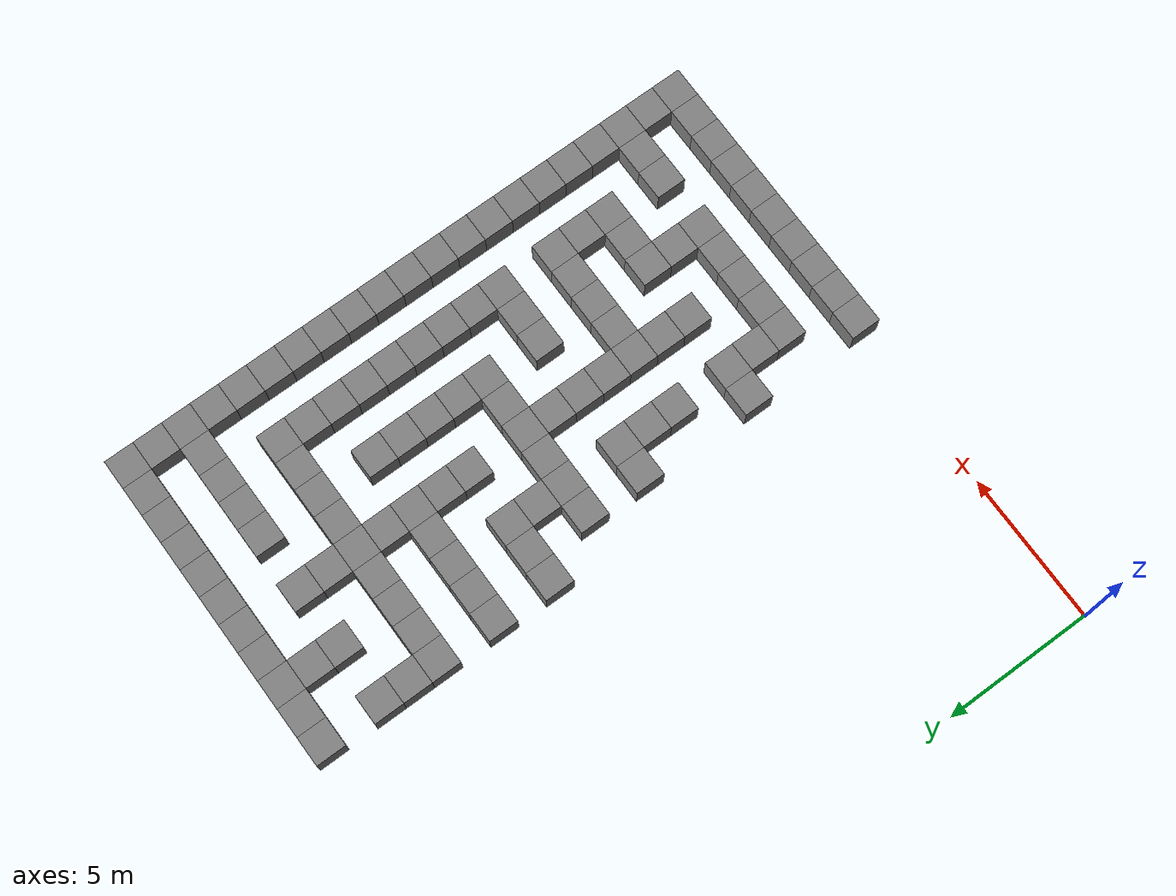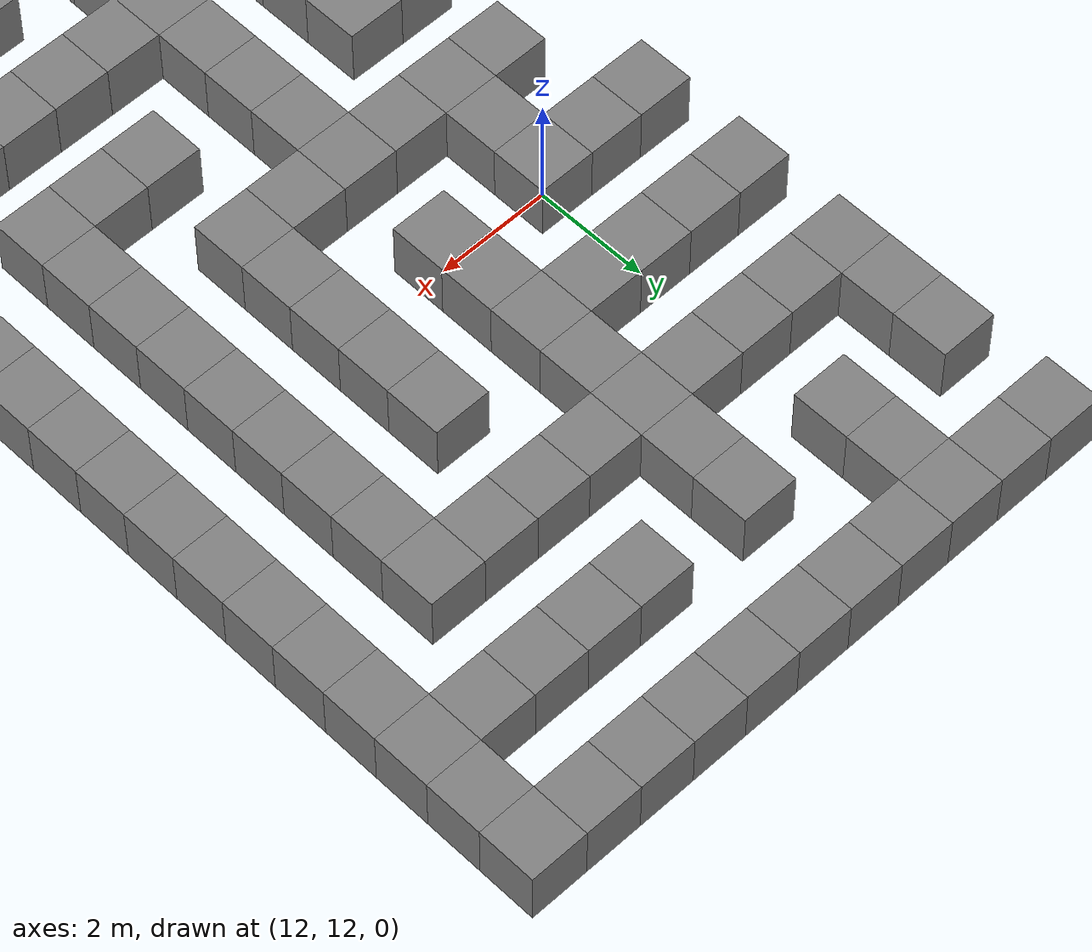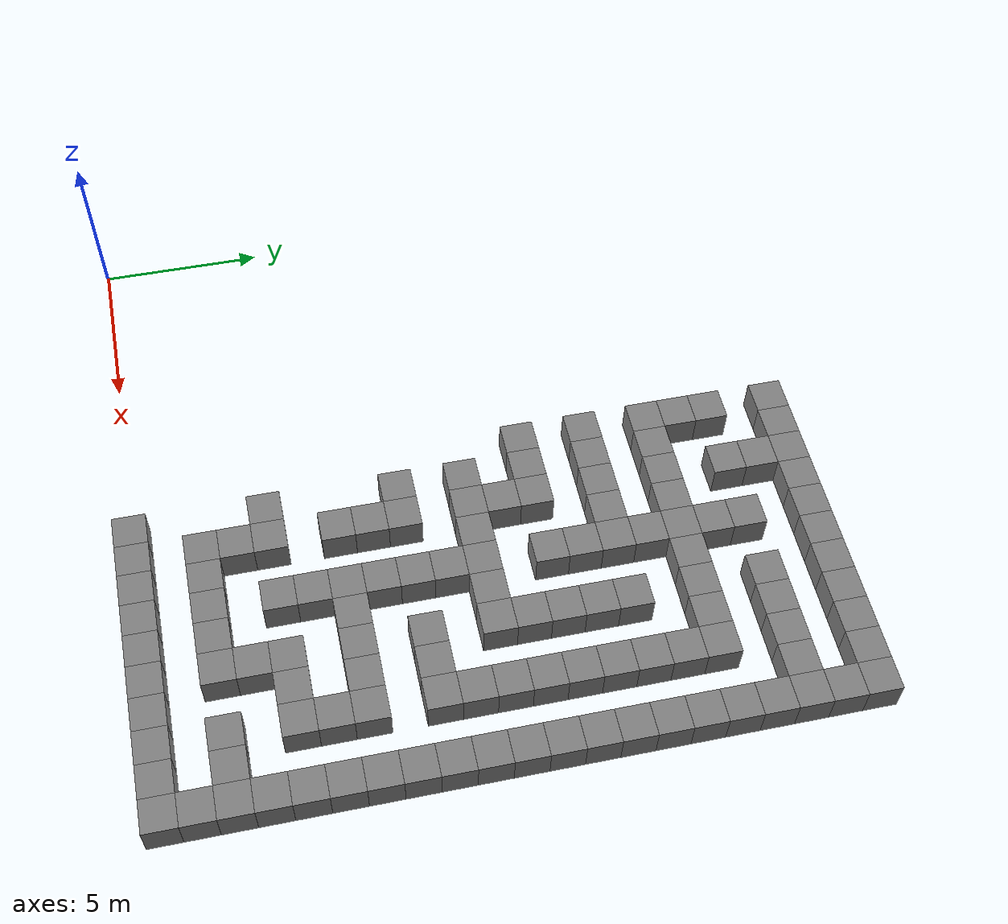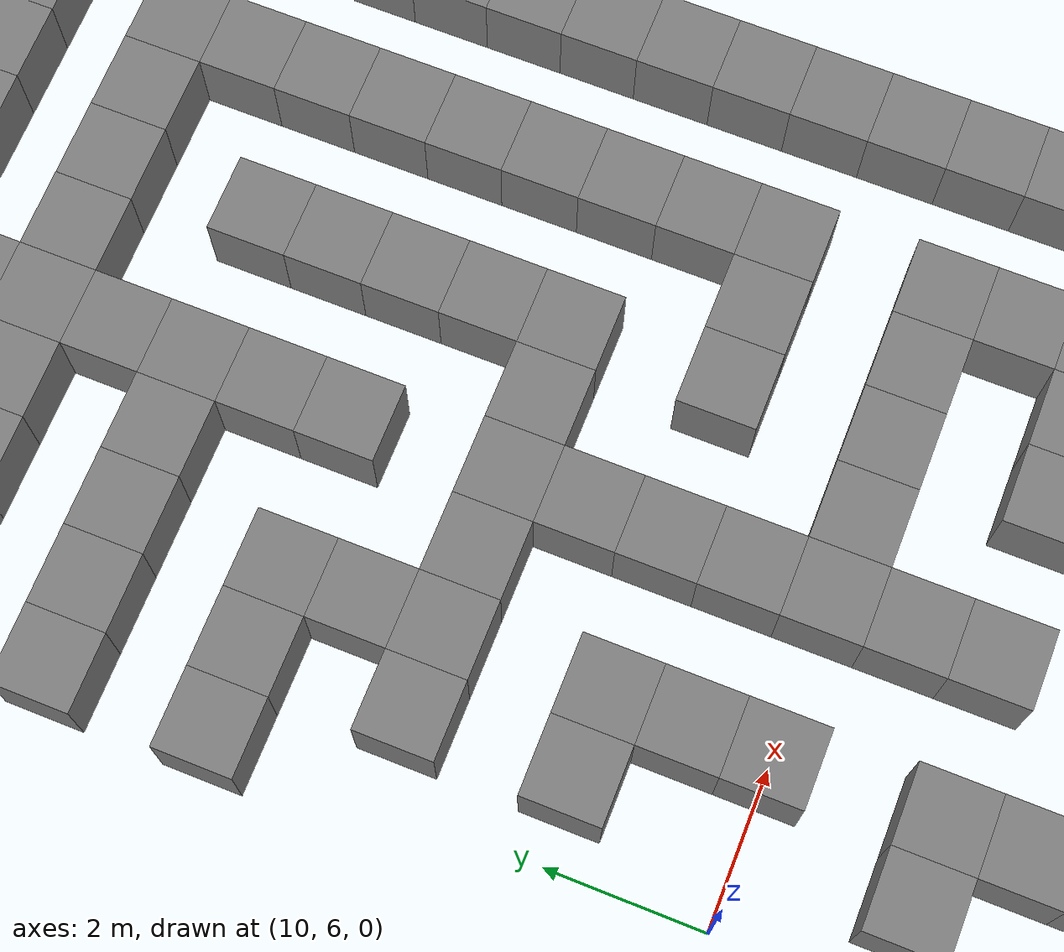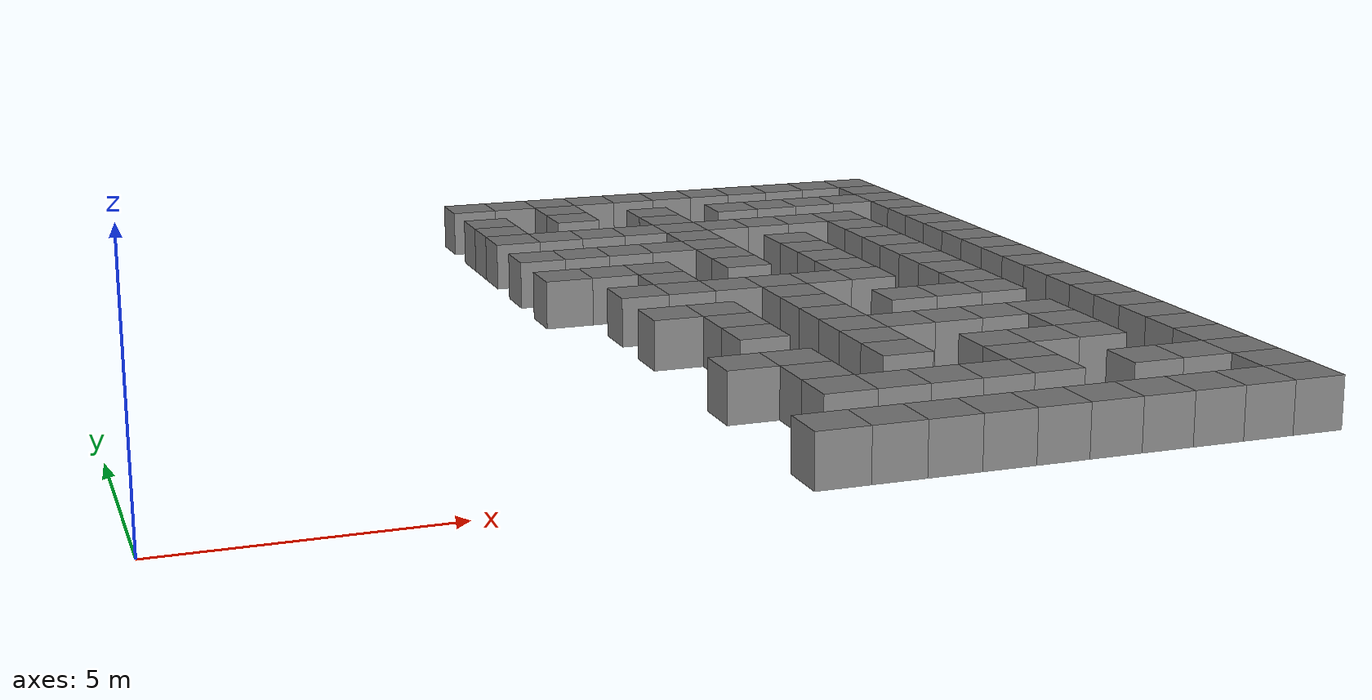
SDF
<sdf version="1.7">
 <model name="maze">
  <static>true</static>
  <link name="wall_10_12">
   <pose>10.0 12.0 0.5 0 0 0</pose>
   <collision name="collision"><geometry><box><size>1.0 1.0 1.0</size></box></geometry></collision>
   <visual name="visual">
    <geometry><box><size>1.0 1.0 1.0</size></box></geometry>
    <material><ambient>0.5 0.5 0.5 1</ambient></material>
   </visual>
  </link>
  <link name="wall_10_14">
   <pose>10.0 14.0 0.5 0 0 0</pose>
   <collision name="collision"><geometry><box><size>1.0 1.0 1.0</size></box></geometry></collision>
   <visual name="visual">
    <geometry><box><size>1.0 1.0 1.0</size></box></geometry>
    <material><ambient>0.5 0.5 0.5 1</ambient></material>
   </visual>
  </link>
  <link name="wall_10_16">
   <pose>10.0 16.0 0.5 0 0 0</pose>
   <collision name="collision"><geometry><box><size>1.0 1.0 1.0</size></box></geometry></collision>
   <visual name="visual">
    <geometry><box><size>1.0 1.0 1.0</size></box></geometry>
    <material><ambient>0.5 0.5 0.5 1</ambient></material>
   </visual>
  </link>
  <link name="wall_10_17">
   <pose>10.0 17.0 0.5 0 0 0</pose>
   <collision name="collision"><geometry><box><size>1.0 1.0 1.0</size></box></geometry></collision>
   <visual name="visual">
    <geometry><box><size>1.0 1.0 1.0</size></box></geometry>
    <material><ambient>0.5 0.5 0.5 1</ambient></material>
   </visual>
  </link>
  <link name="wall_10_18">
   <pose>10.0 18.0 0.5 0 0 0</pose>
   <collision name="collision"><geometry><box><size>1.0 1.0 1.0</size></box></geometry></collision>
   <visual name="visual">
    <geometry><box><size>1.0 1.0 1.0</size></box></geometry>
    <material><ambient>0.5 0.5 0.5 1</ambient></material>
   </visual>
  </link>
  <link name="wall_10_20">
   <pose>10.0 20.0 0.5 0 0 0</pose>
   <collision name="collision"><geometry><box><size>1.0 1.0 1.0</size></box></geometry></collision>
   <visual name="visual">
    <geometry><box><size>1.0 1.0 1.0</size></box></geometry>
    <material><ambient>0.5 0.5 0.5 1</ambient></material>
   </visual>
  </link>
  <link name="wall_11_0">
   <pose>11.0 0.0 0.5 0 0 0</pose>
   <collision name="collision"><geometry><box><size>1.0 1.0 1.0</size></box></geometry></collision>
   <visual name="visual">
    <geometry><box><size>1.0 1.0 1.0</size></box></geometry>
    <material><ambient>0.5 0.5 0.5 1</ambient></material>
   </visual>
  </link>
  <link name="wall_11_4">
   <pose>11.0 4.0 0.5 0 0 0</pose>
   <collision name="collision"><geometry><box><size>1.0 1.0 1.0</size></box></geometry></collision>
   <visual name="visual">
    <geometry><box><size>1.0 1.0 1.0</size></box></geometry>
    <material><ambient>0.5 0.5 0.5 1</ambient></material>
   </visual>
  </link>
  <link name="wall_11_8">
   <pose>11.0 8.0 0.5 0 0 0</pose>
   <collision name="collision"><geometry><box><size>1.0 1.0 1.0</size></box></geometry></collision>
   <visual name="visual">
    <geometry><box><size>1.0 1.0 1.0</size></box></geometry>
    <material><ambient>0.5 0.5 0.5 1</ambient></material>
   </visual>
  </link>
  <link name="wall_11_10">
   <pose>11.0 10.0 0.5 0 0 0</pose>
   <collision name="collision"><geometry><box><size>1.0 1.0 1.0</size></box></geometry></collision>
   <visual name="visual">
    <geometry><box><size>1.0 1.0 1.0</size></box></geometry>
    <material><ambient>0.5 0.5 0.5 1</ambient></material>
   </visual>
  </link>
  <link name="wall_11_12">
   <pose>11.0 12.0 0.5 0 0 0</pose>
   <collision name="collision"><geometry><box><size>1.0 1.0 1.0</size></box></geometry></collision>
   <visual name="visual">
    <geometry><box><size>1.0 1.0 1.0</size></box></geometry>
    <material><ambient>0.5 0.5 0.5 1</ambient></material>
   </visual>
  </link>
  <link name="wall_11_14">
   <pose>11.0 14.0 0.5 0 0 0</pose>
   <collision name="collision"><geometry><box><size>1.0 1.0 1.0</size></box></geometry></collision>
   <visual name="visual">
    <geometry><box><size>1.0 1.0 1.0</size></box></geometry>
    <material><ambient>0.5 0.5 0.5 1</ambient></material>
   </visual>
  </link>
  <link name="wall_11_16">
   <pose>11.0 16.0 0.5 0 0 0</pose>
   <collision name="collision"><geometry><box><size>1.0 1.0 1.0</size></box></geometry></collision>
   <visual name="visual">
    <geometry><box><size>1.0 1.0 1.0</size></box></geometry>
    <material><ambient>0.5 0.5 0.5 1</ambient></material>
   </visual>
  </link>
  <link name="wall_11_20">
   <pose>11.0 20.0 0.5 0 0 0</pose>
   <collision name="collision"><geometry><box><size>1.0 1.0 1.0</size></box></geometry></collision>
   <visual name="visual">
    <geometry><box><size>1.0 1.0 1.0</size></box></geometry>
    <material><ambient>0.5 0.5 0.5 1</ambient></material>
   </visual>
  </link>
  <link name="wall_12_0">
   <pose>12.0 0.0 0.5 0 0 0</pose>
   <collision name="collision"><geometry><box><size>1.0 1.0 1.0</size></box></geometry></collision>
   <visual name="visual">
    <geometry><box><size>1.0 1.0 1.0</size></box></geometry>
    <material><ambient>0.5 0.5 0.5 1</ambient></material>
   </visual>
  </link>
  <link name="wall_12_2">
   <pose>12.0 2.0 0.5 0 0 0</pose>
   <collision name="collision"><geometry><box><size>1.0 1.0 1.0</size></box></geometry></collision>
   <visual name="visual">
    <geometry><box><size>1.0 1.0 1.0</size></box></geometry>
    <material><ambient>0.5 0.5 0.5 1</ambient></material>
   </visual>
  </link>
  <link name="wall_12_3">
   <pose>12.0 3.0 0.5 0 0 0</pose>
   <collision name="collision"><geometry><box><size>1.0 1.0 1.0</size></box></geometry></collision>
   <visual name="visual">
    <geometry><box><size>1.0 1.0 1.0</size></box></geometry>
    <material><ambient>0.5 0.5 0.5 1</ambient></material>
   </visual>
  </link>
  <link name="wall_12_4">
   <pose>12.0 4.0 0.5 0 0 0</pose>
   <collision name="collision"><geometry><box><size>1.0 1.0 1.0</size></box></geometry></collision>
   <visual name="visual">
    <geometry><box><size>1.0 1.0 1.0</size></box></geometry>
    <material><ambient>0.5 0.5 0.5 1</ambient></material>
   </visual>
  </link>
  <link name="wall_12_6">
   <pose>12.0 6.0 0.5 0 0 0</pose>
   <collision name="collision"><geometry><box><size>1.0 1.0 1.0</size></box></geometry></collision>
   <visual name="visual">
    <geometry><box><size>1.0 1.0 1.0</size></box></geometry>
    <material><ambient>0.5 0.5 0.5 1</ambient></material>
   </visual>
  </link>
  <link name="wall_12_7">
   <pose>12.0 7.0 0.5 0 0 0</pose>
   <collision name="collision"><geometry><box><size>1.0 1.0 1.0</size></box></geometry></collision>
   <visual name="visual">
    <geometry><box><size>1.0 1.0 1.0</size></box></geometry>
    <material><ambient>0.5 0.5 0.5 1</ambient></material>
   </visual>
  </link>
  <link name="wall_12_8">
   <pose>12.0 8.0 0.5 0 0 0</pose>
   <collision name="collision"><geometry><box><size>1.0 1.0 1.0</size></box></geometry></collision>
   <visual name="visual">
    <geometry><box><size>1.0 1.0 1.0</size></box></geometry>
    <material><ambient>0.5 0.5 0.5 1</ambient></material>
   </visual>
  </link>
  <link name="wall_12_10">
   <pose>12.0 10.0 0.5 0 0 0</pose>
   <collision name="collision"><geometry><box><size>1.0 1.0 1.0</size></box></geometry></collision>
   <visual name="visual">
    <geometry><box><size>1.0 1.0 1.0</size></box></geometry>
    <material><ambient>0.5 0.5 0.5 1</ambient></material>
   </visual>
  </link>
  <link name="wall_12_11">
   <pose>12.0 11.0 0.5 0 0 0</pose>
   <collision name="collision"><geometry><box><size>1.0 1.0 1.0</size></box></geometry></collision>
   <visual name="visual">
    <geometry><box><size>1.0 1.0 1.0</size></box></geometry>
    <material><ambient>0.5 0.5 0.5 1</ambient></material>
   </visual>
  </link>
  <link name="wall_12_12">
   <pose>12.0 12.0 0.5 0 0 0</pose>
   <collision name="collision"><geometry><box><size>1.0 1.0 1.0</size></box></geometry></collision>
   <visual name="visual">
    <geometry><box><size>1.0 1.0 1.0</size></box></geometry>
    <material><ambient>0.5 0.5 0.5 1</ambient></material>
   </visual>
  </link>
  <link name="wall_12_14">
   <pose>12.0 14.0 0.5 0 0 0</pose>
   <collision name="collision"><geometry><box><size>1.0 1.0 1.0</size></box></geometry></collision>
   <visual name="visual">
    <geometry><box><size>1.0 1.0 1.0</size></box></geometry>
    <material><ambient>0.5 0.5 0.5 1</ambient></material>
   </visual>
  </link>
  <link name="wall_12_16">
   <pose>12.0 16.0 0.5 0 0 0</pose>
   <collision name="collision"><geometry><box><size>1.0 1.0 1.0</size></box></geometry></collision>
   <visual name="visual">
    <geometry><box><size>1.0 1.0 1.0</size></box></geometry>
    <material><ambient>0.5 0.5 0.5 1</ambient></material>
   </visual>
  </link>
  <link name="wall_12_18">
   <pose>12.0 18.0 0.5 0 0 0</pose>
   <collision name="collision"><geometry><box><size>1.0 1.0 1.0</size></box></geometry></collision>
   <visual name="visual">
    <geometry><box><size>1.0 1.0 1.0</size></box></geometry>
    <material><ambient>0.5 0.5 0.5 1</ambient></material>
   </visual>
  </link>
  <link name="wall_12_19">
   <pose>12.0 19.0 0.5 0 0 0</pose>
   <collision name="collision"><geometry><box><size>1.0 1.0 1.0</size></box></geometry></collision>
   <visual name="visual">
    <geometry><box><size>1.0 1.0 1.0</size></box></geometry>
    <material><ambient>0.5 0.5 0.5 1</ambient></material>
   </visual>
  </link>
  <link name="wall_12_20">
   <pose>12.0 20.0 0.5 0 0 0</pose>
   <collision name="collision"><geometry><box><size>1.0 1.0 1.0</size></box></geometry></collision>
   <visual name="visual">
    <geometry><box><size>1.0 1.0 1.0</size></box></geometry>
    <material><ambient>0.5 0.5 0.5 1</ambient></material>
   </visual>
  </link>
  <link name="wall_13_0">
   <pose>13.0 0.0 0.5 0 0 0</pose>
   <collision name="collision"><geometry><box><size>1.0 1.0 1.0</size></box></geometry></collision>
   <visual name="visual">
    <geometry><box><size>1.0 1.0 1.0</size></box></geometry>
    <material><ambient>0.5 0.5 0.5 1</ambient></material>
   </visual>
  </link>
  <link name="wall_13_2">
   <pose>13.0 2.0 0.5 0 0 0</pose>
   <collision name="collision"><geometry><box><size>1.0 1.0 1.0</size></box></geometry></collision>
   <visual name="visual">
    <geometry><box><size>1.0 1.0 1.0</size></box></geometry>
    <material><ambient>0.5 0.5 0.5 1</ambient></material>
   </visual>
  </link>
  <link name="wall_13_10">
   <pose>13.0 10.0 0.5 0 0 0</pose>
   <collision name="collision"><geometry><box><size>1.0 1.0 1.0</size></box></geometry></collision>
   <visual name="visual">
    <geometry><box><size>1.0 1.0 1.0</size></box></geometry>
    <material><ambient>0.5 0.5 0.5 1</ambient></material>
   </visual>
  </link>
  <link name="wall_13_14">
   <pose>13.0 14.0 0.5 0 0 0</pose>
   <collision name="collision"><geometry><box><size>1.0 1.0 1.0</size></box></geometry></collision>
   <visual name="visual">
    <geometry><box><size>1.0 1.0 1.0</size></box></geometry>
    <material><ambient>0.5 0.5 0.5 1</ambient></material>
   </visual>
  </link>
  <link name="wall_13_16">
   <pose>13.0 16.0 0.5 0 0 0</pose>
   <collision name="collision"><geometry><box><size>1.0 1.0 1.0</size></box></geometry></collision>
   <visual name="visual">
    <geometry><box><size>1.0 1.0 1.0</size></box></geometry>
    <material><ambient>0.5 0.5 0.5 1</ambient></material>
   </visual>
  </link>
  <link name="wall_13_20">
   <pose>13.0 20.0 0.5 0 0 0</pose>
   <collision name="collision"><geometry><box><size>1.0 1.0 1.0</size></box></geometry></collision>
   <visual name="visual">
    <geometry><box><size>1.0 1.0 1.0</size></box></geometry>
    <material><ambient>0.5 0.5 0.5 1</ambient></material>
   </visual>
  </link>
  <link name="wall_14_0">
   <pose>14.0 0.0 0.5 0 0 0</pose>
   <collision name="collision"><geometry><box><size>1.0 1.0 1.0</size></box></geometry></collision>
   <visual name="visual">
    <geometry><box><size>1.0 1.0 1.0</size></box></geometry>
    <material><ambient>0.5 0.5 0.5 1</ambient></material>
   </visual>
  </link>
  <link name="wall_14_2">
   <pose>14.0 2.0 0.5 0 0 0</pose>
   <collision name="collision"><geometry><box><size>1.0 1.0 1.0</size></box></geometry></collision>
   <visual name="visual">
    <geometry><box><size>1.0 1.0 1.0</size></box></geometry>
    <material><ambient>0.5 0.5 0.5 1</ambient></material>
   </visual>
  </link>
  <link name="wall_14_4">
   <pose>14.0 4.0 0.5 0 0 0</pose>
   <collision name="collision"><geometry><box><size>1.0 1.0 1.0</size></box></geometry></collision>
   <visual name="visual">
    <geometry><box><size>1.0 1.0 1.0</size></box></geometry>
    <material><ambient>0.5 0.5 0.5 1</ambient></material>
   </visual>
  </link>
  <link name="wall_14_5">
   <pose>14.0 5.0 0.5 0 0 0</pose>
   <collision name="collision"><geometry><box><size>1.0 1.0 1.0</size></box></geometry></collision>
   <visual name="visual">
    <geometry><box><size>1.0 1.0 1.0</size></box></geometry>
    <material><ambient>0.5 0.5 0.5 1</ambient></material>
   </visual>
  </link>
  <link name="wall_14_6">
   <pose>14.0 6.0 0.5 0 0 0</pose>
   <collision name="collision"><geometry><box><size>1.0 1.0 1.0</size></box></geometry></collision>
   <visual name="visual">
    <geometry><box><size>1.0 1.0 1.0</size></box></geometry>
    <material><ambient>0.5 0.5 0.5 1</ambient></material>
   </visual>
  </link>
  <link name="wall_14_7">
   <pose>14.0 7.0 0.5 0 0 0</pose>
   <collision name="collision"><geometry><box><size>1.0 1.0 1.0</size></box></geometry></collision>
   <visual name="visual">
    <geometry><box><size>1.0 1.0 1.0</size></box></geometry>
    <material><ambient>0.5 0.5 0.5 1</ambient></material>
   </visual>
  </link>
  <link name="wall_14_8">
   <pose>14.0 8.0 0.5 0 0 0</pose>
   <collision name="collision"><geometry><box><size>1.0 1.0 1.0</size></box></geometry></collision>
   <visual name="visual">
    <geometry><box><size>1.0 1.0 1.0</size></box></geometry>
    <material><ambient>0.5 0.5 0.5 1</ambient></material>
   </visual>
  </link>
  <link name="wall_14_9">
   <pose>14.0 9.0 0.5 0 0 0</pose>
   <collision name="collision"><geometry><box><size>1.0 1.0 1.0</size></box></geometry></collision>
   <visual name="visual">
    <geometry><box><size>1.0 1.0 1.0</size></box></geometry>
    <material><ambient>0.5 0.5 0.5 1</ambient></material>
   </visual>
  </link>
  <link name="wall_14_10">
   <pose>14.0 10.0 0.5 0 0 0</pose>
   <collision name="collision"><geometry><box><size>1.0 1.0 1.0</size></box></geometry></collision>
   <visual name="visual">
    <geometry><box><size>1.0 1.0 1.0</size></box></geometry>
    <material><ambient>0.5 0.5 0.5 1</ambient></material>
   </visual>
  </link>
  <link name="wall_14_12">
   <pose>14.0 12.0 0.5 0 0 0</pose>
   <collision name="collision"><geometry><box><size>1.0 1.0 1.0</size></box></geometry></collision>
   <visual name="visual">
    <geometry><box><size>1.0 1.0 1.0</size></box></geometry>
    <material><ambient>0.5 0.5 0.5 1</ambient></material>
   </visual>
  </link>
  <link name="wall_14_13">
   <pose>14.0 13.0 0.5 0 0 0</pose>
   <collision name="collision"><geometry><box><size>1.0 1.0 1.0</size></box></geometry></collision>
   <visual name="visual">
    <geometry><box><size>1.0 1.0 1.0</size></box></geometry>
    <material><ambient>0.5 0.5 0.5 1</ambient></material>
   </visual>
  </link>
  <link name="wall_14_14">
   <pose>14.0 14.0 0.5 0 0 0</pose>
   <collision name="collision"><geometry><box><size>1.0 1.0 1.0</size></box></geometry></collision>
   <visual name="visual">
    <geometry><box><size>1.0 1.0 1.0</size></box></geometry>
    <material><ambient>0.5 0.5 0.5 1</ambient></material>
   </visual>
  </link>
  <link name="wall_14_15">
   <pose>14.0 15.0 0.5 0 0 0</pose>
   <collision name="collision"><geometry><box><size>1.0 1.0 1.0</size></box></geometry></collision>
   <visual name="visual">
    <geometry><box><size>1.0 1.0 1.0</size></box></geometry>
    <material><ambient>0.5 0.5 0.5 1</ambient></material>
   </visual>
  </link>
  <link name="wall_14_16">
   <pose>14.0 16.0 0.5 0 0 0</pose>
   <collision name="collision"><geometry><box><size>1.0 1.0 1.0</size></box></geometry></collision>
   <visual name="visual">
    <geometry><box><size>1.0 1.0 1.0</size></box></geometry>
    <material><ambient>0.5 0.5 0.5 1</ambient></material>
   </visual>
  </link>
  <link name="wall_14_17">
   <pose>14.0 17.0 0.5 0 0 0</pose>
   <collision name="collision"><geometry><box><size>1.0 1.0 1.0</size></box></geometry></collision>
   <visual name="visual">
    <geometry><box><size>1.0 1.0 1.0</size></box></geometry>
    <material><ambient>0.5 0.5 0.5 1</ambient></material>
   </visual>
  </link>
  <link name="wall_14_18">
   <pose>14.0 18.0 0.5 0 0 0</pose>
   <collision name="collision"><geometry><box><size>1.0 1.0 1.0</size></box></geometry></collision>
   <visual name="visual">
    <geometry><box><size>1.0 1.0 1.0</size></box></geometry>
    <material><ambient>0.5 0.5 0.5 1</ambient></material>
   </visual>
  </link>
  <link name="wall_14_20">
   <pose>14.0 20.0 0.5 0 0 0</pose>
   <collision name="collision"><geometry><box><size>1.0 1.0 1.0</size></box></geometry></collision>
   <visual name="visual">
    <geometry><box><size>1.0 1.0 1.0</size></box></geometry>
    <material><ambient>0.5 0.5 0.5 1</ambient></material>
   </visual>
  </link>
  <link name="wall_15_0">
   <pose>15.0 0.0 0.5 0 0 0</pose>
   <collision name="collision"><geometry><box><size>1.0 1.0 1.0</size></box></geometry></collision>
   <visual name="visual">
    <geometry><box><size>1.0 1.0 1.0</size></box></geometry>
    <material><ambient>0.5 0.5 0.5 1</ambient></material>
   </visual>
  </link>
  <link name="wall_15_2">
   <pose>15.0 2.0 0.5 0 0 0</pose>
   <collision name="collision"><geometry><box><size>1.0 1.0 1.0</size></box></geometry></collision>
   <visual name="visual">
    <geometry><box><size>1.0 1.0 1.0</size></box></geometry>
    <material><ambient>0.5 0.5 0.5 1</ambient></material>
   </visual>
  </link>
  <link name="wall_15_6">
   <pose>15.0 6.0 0.5 0 0 0</pose>
   <collision name="collision"><geometry><box><size>1.0 1.0 1.0</size></box></geometry></collision>
   <visual name="visual">
    <geometry><box><size>1.0 1.0 1.0</size></box></geometry>
    <material><ambient>0.5 0.5 0.5 1</ambient></material>
   </visual>
  </link>
  <link name="wall_15_10">
   <pose>15.0 10.0 0.5 0 0 0</pose>
   <collision name="collision"><geometry><box><size>1.0 1.0 1.0</size></box></geometry></collision>
   <visual name="visual">
    <geometry><box><size>1.0 1.0 1.0</size></box></geometry>
    <material><ambient>0.5 0.5 0.5 1</ambient></material>
   </visual>
  </link>
  <link name="wall_15_16">
   <pose>15.0 16.0 0.5 0 0 0</pose>
   <collision name="collision"><geometry><box><size>1.0 1.0 1.0</size></box></geometry></collision>
   <visual name="visual">
    <geometry><box><size>1.0 1.0 1.0</size></box></geometry>
    <material><ambient>0.5 0.5 0.5 1</ambient></material>
   </visual>
  </link>
  <link name="wall_15_20">
   <pose>15.0 20.0 0.5 0 0 0</pose>
   <collision name="collision"><geometry><box><size>1.0 1.0 1.0</size></box></geometry></collision>
   <visual name="visual">
    <geometry><box><size>1.0 1.0 1.0</size></box></geometry>
    <material><ambient>0.5 0.5 0.5 1</ambient></material>
   </visual>
  </link>
  <link name="wall_16_0">
   <pose>16.0 0.0 0.5 0 0 0</pose>
   <collision name="collision"><geometry><box><size>1.0 1.0 1.0</size></box></geometry></collision>
   <visual name="visual">
    <geometry><box><size>1.0 1.0 1.0</size></box></geometry>
    <material><ambient>0.5 0.5 0.5 1</ambient></material>
   </visual>
  </link>
  <link name="wall_16_2">
   <pose>16.0 2.0 0.5 0 0 0</pose>
   <collision name="collision"><geometry><box><size>1.0 1.0 1.0</size></box></geometry></collision>
   <visual name="visual">
    <geometry><box><size>1.0 1.0 1.0</size></box></geometry>
    <material><ambient>0.5 0.5 0.5 1</ambient></material>
   </visual>
  </link>
  <link name="wall_16_3">
   <pose>16.0 3.0 0.5 0 0 0</pose>
   <collision name="collision"><geometry><box><size>1.0 1.0 1.0</size></box></geometry></collision>
   <visual name="visual">
    <geometry><box><size>1.0 1.0 1.0</size></box></geometry>
    <material><ambient>0.5 0.5 0.5 1</ambient></material>
   </visual>
  </link>
  <link name="wall_16_4">
   <pose>16.0 4.0 0.5 0 0 0</pose>
   <collision name="collision"><geometry><box><size>1.0 1.0 1.0</size></box></geometry></collision>
   <visual name="visual">
    <geometry><box><size>1.0 1.0 1.0</size></box></geometry>
    <material><ambient>0.5 0.5 0.5 1</ambient></material>
   </visual>
  </link>
  <link name="wall_16_6">
   <pose>16.0 6.0 0.5 0 0 0</pose>
   <collision name="collision"><geometry><box><size>1.0 1.0 1.0</size></box></geometry></collision>
   <visual name="visual">
    <geometry><box><size>1.0 1.0 1.0</size></box></geometry>
    <material><ambient>0.5 0.5 0.5 1</ambient></material>
   </visual>
  </link>
  <link name="wall_16_8">
   <pose>16.0 8.0 0.5 0 0 0</pose>
   <collision name="collision"><geometry><box><size>1.0 1.0 1.0</size></box></geometry></collision>
   <visual name="visual">
    <geometry><box><size>1.0 1.0 1.0</size></box></geometry>
    <material><ambient>0.5 0.5 0.5 1</ambient></material>
   </visual>
  </link>
  <link name="wall_16_10">
   <pose>16.0 10.0 0.5 0 0 0</pose>
   <collision name="collision"><geometry><box><size>1.0 1.0 1.0</size></box></geometry></collision>
   <visual name="visual">
    <geometry><box><size>1.0 1.0 1.0</size></box></geometry>
    <material><ambient>0.5 0.5 0.5 1</ambient></material>
   </visual>
  </link>
  <link name="wall_16_11">
   <pose>16.0 11.0 0.5 0 0 0</pose>
   <collision name="collision"><geometry><box><size>1.0 1.0 1.0</size></box></geometry></collision>
   <visual name="visual">
    <geometry><box><size>1.0 1.0 1.0</size></box></geometry>
    <material><ambient>0.5 0.5 0.5 1</ambient></material>
   </visual>
  </link>
  <link name="wall_16_12">
   <pose>16.0 12.0 0.5 0 0 0</pose>
   <collision name="collision"><geometry><box><size>1.0 1.0 1.0</size></box></geometry></collision>
   <visual name="visual">
    <geometry><box><size>1.0 1.0 1.0</size></box></geometry>
    <material><ambient>0.5 0.5 0.5 1</ambient></material>
   </visual>
  </link>
  <link name="wall_16_13">
   <pose>16.0 13.0 0.5 0 0 0</pose>
   <collision name="collision"><geometry><box><size>1.0 1.0 1.0</size></box></geometry></collision>
   <visual name="visual">
    <geometry><box><size>1.0 1.0 1.0</size></box></geometry>
    <material><ambient>0.5 0.5 0.5 1</ambient></material>
   </visual>
  </link>
  <link name="wall_16_14">
   <pose>16.0 14.0 0.5 0 0 0</pose>
   <collision name="collision"><geometry><box><size>1.0 1.0 1.0</size></box></geometry></collision>
   <visual name="visual">
    <geometry><box><size>1.0 1.0 1.0</size></box></geometry>
    <material><ambient>0.5 0.5 0.5 1</ambient></material>
   </visual>
  </link>
  <link name="wall_16_16">
   <pose>16.0 16.0 0.5 0 0 0</pose>
   <collision name="collision"><geometry><box><size>1.0 1.0 1.0</size></box></geometry></collision>
   <visual name="visual">
    <geometry><box><size>1.0 1.0 1.0</size></box></geometry>
    <material><ambient>0.5 0.5 0.5 1</ambient></material>
   </visual>
  </link>
  <link name="wall_16_18">
   <pose>16.0 18.0 0.5 0 0 0</pose>
   <collision name="collision"><geometry><box><size>1.0 1.0 1.0</size></box></geometry></collision>
   <visual name="visual">
    <geometry><box><size>1.0 1.0 1.0</size></box></geometry>
    <material><ambient>0.5 0.5 0.5 1</ambient></material>
   </visual>
  </link>
  <link name="wall_16_20">
   <pose>16.0 20.0 0.5 0 0 0</pose>
   <collision name="collision"><geometry><box><size>1.0 1.0 1.0</size></box></geometry></collision>
   <visual name="visual">
    <geometry><box><size>1.0 1.0 1.0</size></box></geometry>
    <material><ambient>0.5 0.5 0.5 1</ambient></material>
   </visual>
  </link>
  <link name="wall_17_0">
   <pose>17.0 0.0 0.5 0 0 0</pose>
   <collision name="collision"><geometry><box><size>1.0 1.0 1.0</size></box></geometry></collision>
   <visual name="visual">
    <geometry><box><size>1.0 1.0 1.0</size></box></geometry>
    <material><ambient>0.5 0.5 0.5 1</ambient></material>
   </visual>
  </link>
  <link name="wall_17_4">
   <pose>17.0 4.0 0.5 0 0 0</pose>
   <collision name="collision"><geometry><box><size>1.0 1.0 1.0</size></box></geometry></collision>
   <visual name="visual">
    <geometry><box><size>1.0 1.0 1.0</size></box></geometry>
    <material><ambient>0.5 0.5 0.5 1</ambient></material>
   </visual>
  </link>
  <link name="wall_17_6">
   <pose>17.0 6.0 0.5 0 0 0</pose>
   <collision name="collision"><geometry><box><size>1.0 1.0 1.0</size></box></geometry></collision>
   <visual name="visual">
    <geometry><box><size>1.0 1.0 1.0</size></box></geometry>
    <material><ambient>0.5 0.5 0.5 1</ambient></material>
   </visual>
  </link>
  <link name="wall_17_8">
   <pose>17.0 8.0 0.5 0 0 0</pose>
   <collision name="collision"><geometry><box><size>1.0 1.0 1.0</size></box></geometry></collision>
   <visual name="visual">
    <geometry><box><size>1.0 1.0 1.0</size></box></geometry>
    <material><ambient>0.5 0.5 0.5 1</ambient></material>
   </visual>
  </link>
  <link name="wall_17_16">
   <pose>17.0 16.0 0.5 0 0 0</pose>
   <collision name="collision"><geometry><box><size>1.0 1.0 1.0</size></box></geometry></collision>
   <visual name="visual">
    <geometry><box><size>1.0 1.0 1.0</size></box></geometry>
    <material><ambient>0.5 0.5 0.5 1</ambient></material>
   </visual>
  </link>
  <link name="wall_17_18">
   <pose>17.0 18.0 0.5 0 0 0</pose>
   <collision name="collision"><geometry><box><size>1.0 1.0 1.0</size></box></geometry></collision>
   <visual name="visual">
    <geometry><box><size>1.0 1.0 1.0</size></box></geometry>
    <material><ambient>0.5 0.5 0.5 1</ambient></material>
   </visual>
  </link>
  <link name="wall_17_20">
   <pose>17.0 20.0 0.5 0 0 0</pose>
   <collision name="collision"><geometry><box><size>1.0 1.0 1.0</size></box></geometry></collision>
   <visual name="visual">
    <geometry><box><size>1.0 1.0 1.0</size></box></geometry>
    <material><ambient>0.5 0.5 0.5 1</ambient></material>
   </visual>
  </link>
  <link name="wall_18_0">
   <pose>18.0 0.0 0.5 0 0 0</pose>
   <collision name="collision"><geometry><box><size>1.0 1.0 1.0</size></box></geometry></collision>
   <visual name="visual">
    <geometry><box><size>1.0 1.0 1.0</size></box></geometry>
    <material><ambient>0.5 0.5 0.5 1</ambient></material>
   </visual>
  </link>
  <link name="wall_18_2">
   <pose>18.0 2.0 0.5 0 0 0</pose>
   <collision name="collision"><geometry><box><size>1.0 1.0 1.0</size></box></geometry></collision>
   <visual name="visual">
    <geometry><box><size>1.0 1.0 1.0</size></box></geometry>
    <material><ambient>0.5 0.5 0.5 1</ambient></material>
   </visual>
  </link>
  <link name="wall_18_4">
   <pose>18.0 4.0 0.5 0 0 0</pose>
   <collision name="collision"><geometry><box><size>1.0 1.0 1.0</size></box></geometry></collision>
   <visual name="visual">
    <geometry><box><size>1.0 1.0 1.0</size></box></geometry>
    <material><ambient>0.5 0.5 0.5 1</ambient></material>
   </visual>
  </link>
  <link name="wall_18_5">
   <pose>18.0 5.0 0.5 0 0 0</pose>
   <collision name="collision"><geometry><box><size>1.0 1.0 1.0</size></box></geometry></collision>
   <visual name="visual">
    <geometry><box><size>1.0 1.0 1.0</size></box></geometry>
    <material><ambient>0.5 0.5 0.5 1</ambient></material>
   </visual>
  </link>
  <link name="wall_18_6">
   <pose>18.0 6.0 0.5 0 0 0</pose>
   <collision name="collision"><geometry><box><size>1.0 1.0 1.0</size></box></geometry></collision>
   <visual name="visual">
    <geometry><box><size>1.0 1.0 1.0</size></box></geometry>
    <material><ambient>0.5 0.5 0.5 1</ambient></material>
   </visual>
  </link>
  <link name="wall_18_8">
   <pose>18.0 8.0 0.5 0 0 0</pose>
   <collision name="collision"><geometry><box><size>1.0 1.0 1.0</size></box></geometry></collision>
   <visual name="visual">
    <geometry><box><size>1.0 1.0 1.0</size></box></geometry>
    <material><ambient>0.5 0.5 0.5 1</ambient></material>
   </visual>
  </link>
  <link name="wall_18_9">
   <pose>18.0 9.0 0.5 0 0 0</pose>
   <collision name="collision"><geometry><box><size>1.0 1.0 1.0</size></box></geometry></collision>
   <visual name="visual">
    <geometry><box><size>1.0 1.0 1.0</size></box></geometry>
    <material><ambient>0.5 0.5 0.5 1</ambient></material>
   </visual>
  </link>
  <link name="wall_18_10">
   <pose>18.0 10.0 0.5 0 0 0</pose>
   <collision name="collision"><geometry><box><size>1.0 1.0 1.0</size></box></geometry></collision>
   <visual name="visual">
    <geometry><box><size>1.0 1.0 1.0</size></box></geometry>
    <material><ambient>0.5 0.5 0.5 1</ambient></material>
   </visual>
  </link>
  <link name="wall_18_11">
   <pose>18.0 11.0 0.5 0 0 0</pose>
   <collision name="collision"><geometry><box><size>1.0 1.0 1.0</size></box></geometry></collision>
   <visual name="visual">
    <geometry><box><size>1.0 1.0 1.0</size></box></geometry>
    <material><ambient>0.5 0.5 0.5 1</ambient></material>
   </visual>
  </link>
  <link name="wall_18_12">
   <pose>18.0 12.0 0.5 0 0 0</pose>
   <collision name="collision"><geometry><box><size>1.0 1.0 1.0</size></box></geometry></collision>
   <visual name="visual">
    <geometry><box><size>1.0 1.0 1.0</size></box></geometry>
    <material><ambient>0.5 0.5 0.5 1</ambient></material>
   </visual>
  </link>
  <link name="wall_18_13">
   <pose>18.0 13.0 0.5 0 0 0</pose>
   <collision name="collision"><geometry><box><size>1.0 1.0 1.0</size></box></geometry></collision>
   <visual name="visual">
    <geometry><box><size>1.0 1.0 1.0</size></box></geometry>
    <material><ambient>0.5 0.5 0.5 1</ambient></material>
   </visual>
  </link>
  <link name="wall_18_14">
   <pose>18.0 14.0 0.5 0 0 0</pose>
   <collision name="collision"><geometry><box><size>1.0 1.0 1.0</size></box></geometry></collision>
   <visual name="visual">
    <geometry><box><size>1.0 1.0 1.0</size></box></geometry>
    <material><ambient>0.5 0.5 0.5 1</ambient></material>
   </visual>
  </link>
  <link name="wall_18_15">
   <pose>18.0 15.0 0.5 0 0 0</pose>
   <collision name="collision"><geometry><box><size>1.0 1.0 1.0</size></box></geometry></collision>
   <visual name="visual">
    <geometry><box><size>1.0 1.0 1.0</size></box></geometry>
    <material><ambient>0.5 0.5 0.5 1</ambient></material>
   </visual>
  </link>
  <link name="wall_18_16">
   <pose>18.0 16.0 0.5 0 0 0</pose>
   <collision name="collision"><geometry><box><size>1.0 1.0 1.0</size></box></geometry></collision>
   <visual name="visual">
    <geometry><box><size>1.0 1.0 1.0</size></box></geometry>
    <material><ambient>0.5 0.5 0.5 1</ambient></material>
   </visual>
  </link>
  <link name="wall_18_18">
   <pose>18.0 18.0 0.5 0 0 0</pose>
   <collision name="collision"><geometry><box><size>1.0 1.0 1.0</size></box></geometry></collision>
   <visual name="visual">
    <geometry><box><size>1.0 1.0 1.0</size></box></geometry>
    <material><ambient>0.5 0.5 0.5 1</ambient></material>
   </visual>
  </link>
  <link name="wall_18_20">
   <pose>18.0 20.0 0.5 0 0 0</pose>
   <collision name="collision"><geometry><box><size>1.0 1.0 1.0</size></box></geometry></collision>
   <visual name="visual">
    <geometry><box><size>1.0 1.0 1.0</size></box></geometry>
    <material><ambient>0.5 0.5 0.5 1</ambient></material>
   </visual>
  </link>
  <link name="wall_19_0">
   <pose>19.0 0.0 0.5 0 0 0</pose>
   <collision name="collision"><geometry><box><size>1.0 1.0 1.0</size></box></geometry></collision>
   <visual name="visual">
    <geometry><box><size>1.0 1.0 1.0</size></box></geometry>
    <material><ambient>0.5 0.5 0.5 1</ambient></material>
   </visual>
  </link>
  <link name="wall_19_2">
   <pose>19.0 2.0 0.5 0 0 0</pose>
   <collision name="collision"><geometry><box><size>1.0 1.0 1.0</size></box></geometry></collision>
   <visual name="visual">
    <geometry><box><size>1.0 1.0 1.0</size></box></geometry>
    <material><ambient>0.5 0.5 0.5 1</ambient></material>
   </visual>
  </link>
  <link name="wall_19_18">
   <pose>19.0 18.0 0.5 0 0 0</pose>
   <collision name="collision"><geometry><box><size>1.0 1.0 1.0</size></box></geometry></collision>
   <visual name="visual">
    <geometry><box><size>1.0 1.0 1.0</size></box></geometry>
    <material><ambient>0.5 0.5 0.5 1</ambient></material>
   </visual>
  </link>
  <link name="wall_19_20">
   <pose>19.0 20.0 0.5 0 0 0</pose>
   <collision name="collision"><geometry><box><size>1.0 1.0 1.0</size></box></geometry></collision>
   <visual name="visual">
    <geometry><box><size>1.0 1.0 1.0</size></box></geometry>
    <material><ambient>0.5 0.5 0.5 1</ambient></material>
   </visual>
  </link>
  <link name="wall_20_0">
   <pose>20.0 0.0 0.5 0 0 0</pose>
   <collision name="collision"><geometry><box><size>1.0 1.0 1.0</size></box></geometry></collision>
   <visual name="visual">
    <geometry><box><size>1.0 1.0 1.0</size></box></geometry>
    <material><ambient>0.5 0.5 0.5 1</ambient></material>
   </visual>
  </link>
  <link name="wall_20_1">
   <pose>20.0 1.0 0.5 0 0 0</pose>
   <collision name="collision"><geometry><box><size>1.0 1.0 1.0</size></box></geometry></collision>
   <visual name="visual">
    <geometry><box><size>1.0 1.0 1.0</size></box></geometry>
    <material><ambient>0.5 0.5 0.5 1</ambient></material>
   </visual>
  </link>
  <link name="wall_20_2">
   <pose>20.0 2.0 0.5 0 0 0</pose>
   <collision name="collision"><geometry><box><size>1.0 1.0 1.0</size></box></geometry></collision>
   <visual name="visual">
    <geometry><box><size>1.0 1.0 1.0</size></box></geometry>
    <material><ambient>0.5 0.5 0.5 1</ambient></material>
   </visual>
  </link>
  <link name="wall_20_3">
   <pose>20.0 3.0 0.5 0 0 0</pose>
   <collision name="collision"><geometry><box><size>1.0 1.0 1.0</size></box></geometry></collision>
   <visual name="visual">
    <geometry><box><size>1.0 1.0 1.0</size></box></geometry>
    <material><ambient>0.5 0.5 0.5 1</ambient></material>
   </visual>
  </link>
  <link name="wall_20_4">
   <pose>20.0 4.0 0.5 0 0 0</pose>
   <collision name="collision"><geometry><box><size>1.0 1.0 1.0</size></box></geometry></collision>
   <visual name="visual">
    <geometry><box><size>1.0 1.0 1.0</size></box></geometry>
    <material><ambient>0.5 0.5 0.5 1</ambient></material>
   </visual>
  </link>
  <link name="wall_20_5">
   <pose>20.0 5.0 0.5 0 0 0</pose>
   <collision name="collision"><geometry><box><size>1.0 1.0 1.0</size></box></geometry></collision>
   <visual name="visual">
    <geometry><box><size>1.0 1.0 1.0</size></box></geometry>
    <material><ambient>0.5 0.5 0.5 1</ambient></material>
   </visual>
  </link>
  <link name="wall_20_6">
   <pose>20.0 6.0 0.5 0 0 0</pose>
   <collision name="collision"><geometry><box><size>1.0 1.0 1.0</size></box></geometry></collision>
   <visual name="visual">
    <geometry><box><size>1.0 1.0 1.0</size></box></geometry>
    <material><ambient>0.5 0.5 0.5 1</ambient></material>
   </visual>
  </link>
  <link name="wall_20_7">
   <pose>20.0 7.0 0.5 0 0 0</pose>
   <collision name="collision"><geometry><box><size>1.0 1.0 1.0</size></box></geometry></collision>
   <visual name="visual">
    <geometry><box><size>1.0 1.0 1.0</size></box></geometry>
    <material><ambient>0.5 0.5 0.5 1</ambient></material>
   </visual>
  </link>
  <link name="wall_20_8">
   <pose>20.0 8.0 0.5 0 0 0</pose>
   <collision name="collision"><geometry><box><size>1.0 1.0 1.0</size></box></geometry></collision>
   <visual name="visual">
    <geometry><box><size>1.0 1.0 1.0</size></box></geometry>
    <material><ambient>0.5 0.5 0.5 1</ambient></material>
   </visual>
  </link>
  <link name="wall_20_9">
   <pose>20.0 9.0 0.5 0 0 0</pose>
   <collision name="collision"><geometry><box><size>1.0 1.0 1.0</size></box></geometry></collision>
   <visual name="visual">
    <geometry><box><size>1.0 1.0 1.0</size></box></geometry>
    <material><ambient>0.5 0.5 0.5 1</ambient></material>
   </visual>
  </link>
  <link name="wall_20_10">
   <pose>20.0 10.0 0.5 0 0 0</pose>
   <collision name="collision"><geometry><box><size>1.0 1.0 1.0</size></box></geometry></collision>
   <visual name="visual">
    <geometry><box><size>1.0 1.0 1.0</size></box></geometry>
    <material><ambient>0.5 0.5 0.5 1</ambient></material>
   </visual>
  </link>
  <link name="wall_20_11">
   <pose>20.0 11.0 0.5 0 0 0</pose>
   <collision name="collision"><geometry><box><size>1.0 1.0 1.0</size></box></geometry></collision>
   <visual name="visual">
    <geometry><box><size>1.0 1.0 1.0</size></box></geometry>
    <material><ambient>0.5 0.5 0.5 1</ambient></material>
   </visual>
  </link>
  <link name="wall_20_12">
   <pose>20.0 12.0 0.5 0 0 0</pose>
   <collision name="collision"><geometry><box><size>1.0 1.0 1.0</size></box></geometry></collision>
   <visual name="visual">
    <geometry><box><size>1.0 1.0 1.0</size></box></geometry>
    <material><ambient>0.5 0.5 0.5 1</ambient></material>
   </visual>
  </link>
  <link name="wall_20_13">
   <pose>20.0 13.0 0.5 0 0 0</pose>
   <collision name="collision"><geometry><box><size>1.0 1.0 1.0</size></box></geometry></collision>
   <visual name="visual">
    <geometry><box><size>1.0 1.0 1.0</size></box></geometry>
    <material><ambient>0.5 0.5 0.5 1</ambient></material>
   </visual>
  </link>
  <link name="wall_20_14">
   <pose>20.0 14.0 0.5 0 0 0</pose>
   <collision name="collision"><geometry><box><size>1.0 1.0 1.0</size></box></geometry></collision>
   <visual name="visual">
    <geometry><box><size>1.0 1.0 1.0</size></box></geometry>
    <material><ambient>0.5 0.5 0.5 1</ambient></material>
   </visual>
  </link>
  <link name="wall_20_15">
   <pose>20.0 15.0 0.5 0 0 0</pose>
   <collision name="collision"><geometry><box><size>1.0 1.0 1.0</size></box></geometry></collision>
   <visual name="visual">
    <geometry><box><size>1.0 1.0 1.0</size></box></geometry>
    <material><ambient>0.5 0.5 0.5 1</ambient></material>
   </visual>
  </link>
  <link name="wall_20_16">
   <pose>20.0 16.0 0.5 0 0 0</pose>
   <collision name="collision"><geometry><box><size>1.0 1.0 1.0</size></box></geometry></collision>
   <visual name="visual">
    <geometry><box><size>1.0 1.0 1.0</size></box></geometry>
    <material><ambient>0.5 0.5 0.5 1</ambient></material>
   </visual>
  </link>
  <link name="wall_20_17">
   <pose>20.0 17.0 0.5 0 0 0</pose>
   <collision name="collision"><geometry><box><size>1.0 1.0 1.0</size></box></geometry></collision>
   <visual name="visual">
    <geometry><box><size>1.0 1.0 1.0</size></box></geometry>
    <material><ambient>0.5 0.5 0.5 1</ambient></material>
   </visual>
  </link>
  <link name="wall_20_18">
   <pose>20.0 18.0 0.5 0 0 0</pose>
   <collision name="collision"><geometry><box><size>1.0 1.0 1.0</size></box></geometry></collision>
   <visual name="visual">
    <geometry><box><size>1.0 1.0 1.0</size></box></geometry>
    <material><ambient>0.5 0.5 0.5 1</ambient></material>
   </visual>
  </link>
  <link name="wall_20_19">
   <pose>20.0 19.0 0.5 0 0 0</pose>
   <collision name="collision"><geometry><box><size>1.0 1.0 1.0</size></box></geometry></collision>
   <visual name="visual">
    <geometry><box><size>1.0 1.0 1.0</size></box></geometry>
    <material><ambient>0.5 0.5 0.5 1</ambient></material>
   </visual>
  </link>
  <link name="wall_20_20">
   <pose>20.0 20.0 0.5 0 0 0</pose>
   <collision name="collision"><geometry><box><size>1.0 1.0 1.0</size></box></geometry></collision>
   <visual name="visual">
    <geometry><box><size>1.0 1.0 1.0</size></box></geometry>
    <material><ambient>0.5 0.5 0.5 1</ambient></material>
   </visual>
  </link>
 </model>
</sdf>
